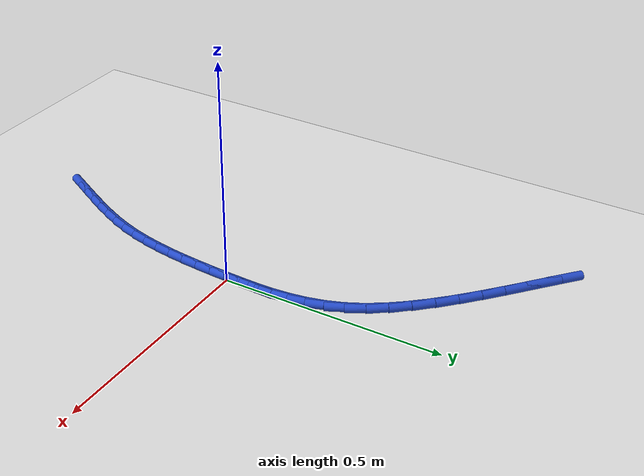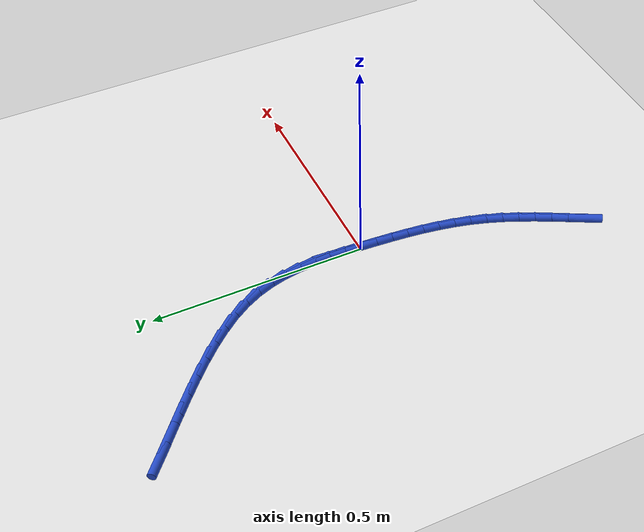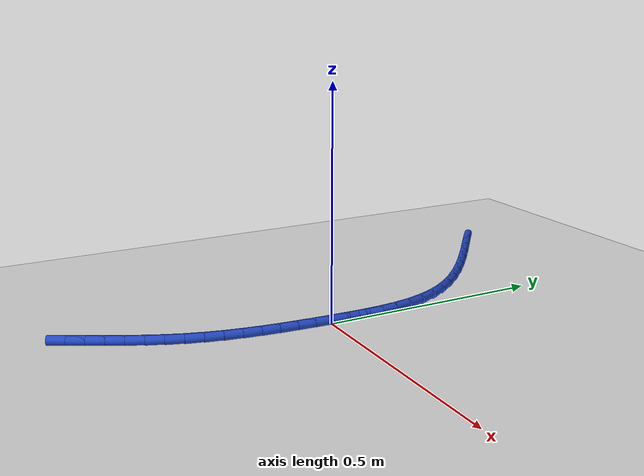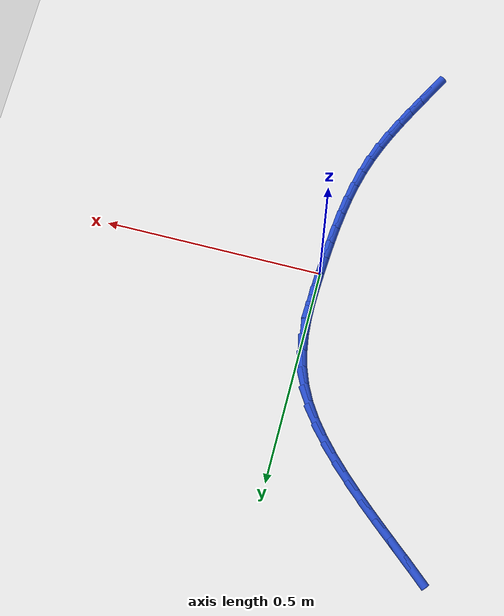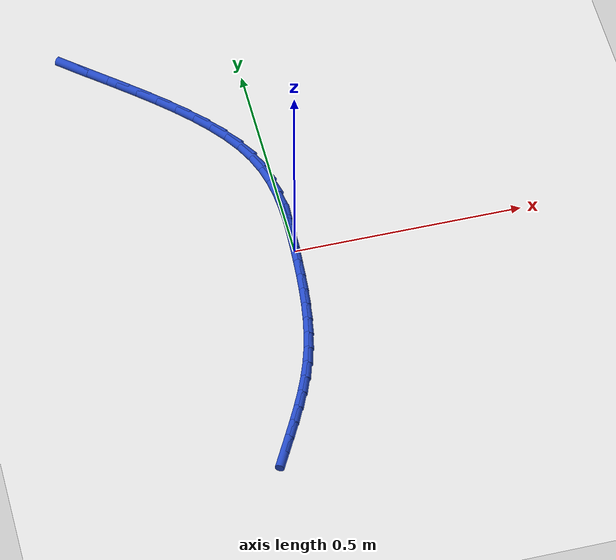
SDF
<sdf version="1.6">
 <world name="default">
  <model name="ground_plane">
   <static>1</static>
   <link name="link">
    <collision name="collision">
     <geometry><plane><normal>0 0 1</normal><size>100 100</size></plane></geometry>
     <surface><friction><ode><mu>100</mu><mu2>50</mu2></ode></friction></surface>
    </collision>
    <visual name="visual">
     <cast_shadows>0</cast_shadows>
     <geometry><plane><normal>0 0 1</normal><size>100 100</size></plane></geometry>
     <material>
      <script><uri>file://media/materials/scripts/gazebo.material</uri><name>Gazebo/WhiteGlow</name></script>
     </material>
    </visual>
   </link>
  </model>
  <model name="line">
   <link name="link_0">
    <pose>-1.5612511283791264e-17 6.938893903907228e-18 0.01 0 1.57 1.524741888929496</pose>
    <collision name="collision">
     <geometry><cylinder><radius>0.01</radius><length>0.08</length></cylinder></geometry>
    </collision>
    <visual name="visual">
     <material>
      <script><name>Gazebo/Blue</name><uri>file://media/materials/scripts/gazebo.material</uri></script>
     </material>
     <geometry><cylinder><radius>0.01</radius><length>0.08</length></cylinder></geometry>
    </visual>
   </link>
   <link name="link_1">
    <pose>0.0017695602424048658 0.03839606043845848 0.01 0 1.57 1.5489203057388585</pose>
    <collision name="collision">
     <geometry><cylinder><radius>0.01</radius><length>0.08</length></cylinder></geometry>
    </collision>
    <visual name="visual">
     <material>
      <script><name>Gazebo/Blue</name><uri>file://media/materials/scripts/gazebo.material</uri></script>
     </material>
     <geometry><cylinder><radius>0.01</radius><length>0.08</length></cylinder></geometry>
    </visual>
   </link>
   <link name="link_2">
    <pose>0.0026070915461237354 0.07667531123249223 0.01 0 1.57 -1.5512971736761452</pose>
    <collision name="collision">
     <geometry><cylinder><radius>0.01</radius><length>0.08</length></cylinder></geometry>
    </collision>
    <visual name="visual">
     <material>
      <script><name>Gazebo/Blue</name><uri>file://media/materials/scripts/gazebo.material</uri></script>
     </material>
     <geometry><cylinder><radius>0.01</radius><length>0.08</length></cylinder></geometry>
    </visual>
   </link>
   <link name="link_3">
    <pose>0.001863651592550372 0.11479726062324151 0.01 0 1.57 -1.4925537547146386</pose>
    <collision name="collision">
     <geometry><cylinder><radius>0.01</radius><length>0.08</length></cylinder></geometry>
    </collision>
    <visual name="visual">
     <material>
      <script><name>Gazebo/Blue</name><uri>file://media/materials/scripts/gazebo.material</uri></script>
     </material>
     <geometry><cylinder><radius>0.01</radius><length>0.08</length></cylinder></geometry>
    </visual>
   </link>
   <link name="link_4">
    <pose>-0.001109701936921447 0.1527214168518466 0.01 0 1.57 -1.4167376080699157</pose>
    <collision name="collision">
     <geometry><cylinder><radius>0.01</radius><length>0.08</length></cylinder></geometry>
    </collision>
    <visual name="visual">
     <material>
      <script><name>Gazebo/Blue</name><uri>file://media/materials/scripts/gazebo.material</uri></script>
     </material>
     <geometry><cylinder><radius>0.01</radius><length>0.08</length></cylinder></geometry>
    </visual>
   </link>
   <link name="link_5">
    <pose>-0.006961911360897937 0.19040728815944785 0.01 0 1.57 -1.3251074124394193</pose>
    <collision name="collision">
     <geometry><cylinder><radius>0.01</radius><length>0.08</length></cylinder></geometry>
    </collision>
    <visual name="visual">
     <material>
      <script><name>Gazebo/Blue</name><uri>file://media/materials/scripts/gazebo.material</uri></script>
     </material>
     <geometry><cylinder><radius>0.01</radius><length>0.08</length></cylinder></geometry>
    </visual>
   </link>
   <link name="link_6">
    <pose>-0.016341918997985316 0.2278143827871855 0.01 0 1.57 -1.2203530256097037</pose>
    <collision name="collision">
     <geometry><cylinder><radius>0.01</radius><length>0.08</length></cylinder></geometry>
    </collision>
    <visual name="visual">
     <material>
      <script><name>Gazebo/Blue</name><uri>file://media/materials/scripts/gazebo.material</uri></script>
     </material>
     <geometry><cylinder><radius>0.01</radius><length>0.08</length></cylinder></geometry>
    </visual>
   </link>
   <link name="link_7">
    <pose>-0.029898667166789822 0.26490220897619987 0.01 0 1.57 -1.1067819046408895</pose>
    <collision name="collision">
     <geometry><cylinder><radius>0.01</radius><length>0.08</length></cylinder></geometry>
    </collision>
    <visual name="visual">
     <material>
      <script><name>Gazebo/Blue</name><uri>file://media/materials/scripts/gazebo.material</uri></script>
     </material>
     <geometry><cylinder><radius>0.01</radius><length>0.08</length></cylinder></geometry>
    </visual>
   </link>
   <link name="link_8">
    <pose>-0.048279553905475815 0.3016302954106456 0.01 0 1.57 -0.997281423581346</pose>
    <collision name="collision">
     <geometry><cylinder><radius>0.01</radius><length>0.08</length></cylinder></geometry>
    </collision>
    <visual name="visual">
     <material>
      <script><name>Gazebo/Blue</name><uri>file://media/materials/scripts/gazebo.material</uri></script>
     </material>
     <geometry><cylinder><radius>0.01</radius><length>0.08</length></cylinder></geometry>
    </visual>
   </link>
   <link name="link_9">
    <pose>-0.071748415662538 0.33796324832078123 0.01 0 1.57 -0.9097134440611083</pose>
    <collision name="collision">
     <geometry><cylinder><radius>0.01</radius><length>0.08</length></cylinder></geometry>
    </collision>
    <visual name="visual">
     <material>
      <script><name>Gazebo/Blue</name><uri>file://media/materials/scripts/gazebo.material</uri></script>
     </material>
     <geometry><cylinder><radius>0.01</radius><length>0.08</length></cylinder></geometry>
    </visual>
   </link>
   <link name="link_10">
    <pose>-0.09968392739692357 0.37387739160722894 0.01 0 1.57 -0.8421960164812233</pose>
    <collision name="collision">
     <geometry><cylinder><radius>0.01</radius><length>0.08</length></cylinder></geometry>
    </collision>
    <visual name="visual">
     <material>
      <script><name>Gazebo/Blue</name><uri>file://media/materials/scripts/gazebo.material</uri></script>
     </material>
     <geometry><cylinder><radius>0.01</radius><length>0.08</length></cylinder></geometry>
    </visual>
   </link>
   <link name="link_11">
    <pose>-0.1313403053092484 0.4093506967419543 0.01 0 1.57 -0.7908399223104757</pose>
    <collision name="collision">
     <geometry><cylinder><radius>0.01</radius><length>0.08</length></cylinder></geometry>
    </collision>
    <visual name="visual">
     <material>
      <script><name>Gazebo/Blue</name><uri>file://media/materials/scripts/gazebo.material</uri></script>
     </material>
     <geometry><cylinder><radius>0.01</radius><length>0.08</length></cylinder></geometry>
    </visual>
   </link>
   <link name="link_12">
    <pose>-0.16597176560012838 0.44436113519692266 0.01 0 1.57 -0.7526974474765623</pose>
    <collision name="collision">
     <geometry><cylinder><radius>0.01</radius><length>0.08</length></cylinder></geometry>
    </collision>
    <visual name="visual">
     <material>
      <script><name>Gazebo/Blue</name><uri>file://media/materials/scripts/gazebo.material</uri></script>
     </material>
     <geometry><cylinder><radius>0.01</radius><length>0.08</length></cylinder></geometry>
    </visual>
   </link>
   <link name="link_13">
    <pose>-0.20283252447017946 0.4788866784440995 0.01 0 1.57 -0.7256919706972766</pose>
    <collision name="collision">
     <geometry><cylinder><radius>0.01</radius><length>0.08</length></cylinder></geometry>
    </collision>
    <visual name="visual">
     <material>
      <script><name>Gazebo/Blue</name><uri>file://media/materials/scripts/gazebo.material</uri></script>
     </material>
     <geometry><cylinder><radius>0.01</radius><length>0.08</length></cylinder></geometry>
    </visual>
   </link>
   <link name="link_14">
    <pose>-0.24117679812001783 0.5129052979554504 0.01 0 1.57 -0.7084906442747316</pose>
    <collision name="collision">
     <geometry><cylinder><radius>0.01</radius><length>0.08</length></cylinder></geometry>
    </collision>
    <visual name="visual">
     <material>
      <script><name>Gazebo/Blue</name><uri>file://media/materials/scripts/gazebo.material</uri></script>
     </material>
     <geometry><cylinder><radius>0.01</radius><length>0.08</length></cylinder></geometry>
    </visual>
   </link>
   <link name="link_15">
    <pose>-0.280258802750259 0.5463949652029404 0.01 0 1.57 -0.7004063416435891</pose>
    <collision name="collision">
     <geometry><cylinder><radius>0.01</radius><length>0.08</length></cylinder></geometry>
    </collision>
    <visual name="visual">
     <material>
      <script><name>Gazebo/Blue</name><uri>file://media/materials/scripts/gazebo.material</uri></script>
     </material>
     <geometry><cylinder><radius>0.01</radius><length>0.08</length></cylinder></geometry>
    </visual>
   </link>
   <link name="link_16">
    <pose>-0.3193327545615192 0.5793336516585352 0.01 0 1.57 -0.7013584550680976</pose>
    <collision name="collision">
     <geometry><cylinder><radius>0.01</radius><length>0.08</length></cylinder></geometry>
    </collision>
    <visual name="visual">
     <material>
      <script><name>Gazebo/Blue</name><uri>file://media/materials/scripts/gazebo.material</uri></script>
     </material>
     <geometry><cylinder><radius>0.01</radius><length>0.08</length></cylinder></geometry>
    </visual>
   </link>
   <link name="link_17">
    <pose>-0.3576528697544143 0.6116993287942004 0.01 0 1.57 -0.7119081820319877</pose>
    <collision name="collision">
     <geometry><cylinder><radius>0.01</radius><length>0.08</length></cylinder></geometry>
    </collision>
    <visual name="visual">
     <material>
      <script><name>Gazebo/Blue</name><uri>file://media/materials/scripts/gazebo.material</uri></script>
     </material>
     <geometry><cylinder><radius>0.01</radius><length>0.08</length></cylinder></geometry>
    </visual>
   </link>
   <link name="link_196">
    <pose>-0.1451383712339014 -0.5084791375413149 0.01 0 1.57 1.0790014653129236</pose>
    <collision name="collision">
     <geometry><cylinder><radius>0.01</radius><length>0.08</length></cylinder></geometry>
    </collision>
    <visual name="visual">
     <material>
      <script><name>Gazebo/Blue</name><uri>file://media/materials/scripts/gazebo.material</uri></script>
     </material>
     <geometry><cylinder><radius>0.01</radius><length>0.08</length></cylinder></geometry>
    </visual>
   </link>
   <link name="link_197">
    <pose>-0.12704058745293917 -0.4746954460418299 0.01 0 1.57 1.0837832020063292</pose>
    <collision name="collision">
     <geometry><cylinder><radius>0.01</radius><length>0.08</length></cylinder></geometry>
    </collision>
    <visual name="visual">
     <material>
      <script><name>Gazebo/Blue</name><uri>file://media/materials/scripts/gazebo.material</uri></script>
     </material>
     <geometry><cylinder><radius>0.01</radius><length>0.08</length></cylinder></geometry>
    </visual>
   </link>
   <link name="link_198">
    <pose>-0.10907541012322408 -0.4407705666037092 0.01 0 1.57 1.0992771399869117</pose>
    <collision name="collision">
     <geometry><cylinder><radius>0.01</radius><length>0.08</length></cylinder></geometry>
    </collision>
    <visual name="visual">
     <material>
      <script><name>Gazebo/Blue</name><uri>file://media/materials/scripts/gazebo.material</uri></script>
     </material>
     <geometry><cylinder><radius>0.01</radius><length>0.08</length></cylinder></geometry>
    </visual>
   </link>
   <link name="link_199">
    <pose>-0.09165113774256298 -0.40659718910293086 0.01 0 1.57 1.1256077960576532</pose>
    <collision name="collision">
     <geometry><cylinder><radius>0.01</radius><length>0.08</length></cylinder></geometry>
    </collision>
    <visual name="visual">
     <material>
      <script><name>Gazebo/Blue</name><uri>file://media/materials/scripts/gazebo.material</uri></script>
     </material>
     <geometry><cylinder><radius>0.01</radius><length>0.08</length></cylinder></geometry>
    </visual>
   </link>
   <link name="link_200">
    <pose>-0.07517606880876256 -0.37206800341547297 0.01 0 1.57 1.1629901142371932</pose>
    <collision name="collision">
     <geometry><cylinder><radius>0.01</radius><length>0.08</length></cylinder></geometry>
    </collision>
    <visual name="visual">
     <material>
      <script><name>Gazebo/Blue</name><uri>file://media/materials/scripts/gazebo.material</uri></script>
     </material>
     <geometry><cylinder><radius>0.01</radius><length>0.08</length></cylinder></geometry>
    </visual>
   </link>
   <link name="link_201">
    <pose>-0.06005850181962963 -0.3370756994173137 0.01 0 1.57 1.2116376352936429</pose>
    <collision name="collision">
     <geometry><cylinder><radius>0.01</radius><length>0.08</length></cylinder></geometry>
    </collision>
    <visual name="visual">
     <material>
      <script><name>Gazebo/Blue</name><uri>file://media/materials/scripts/gazebo.material</uri></script>
     </material>
     <geometry><cylinder><radius>0.01</radius><length>0.08</length></cylinder></geometry>
    </visual>
   </link>
   <link name="link_202">
    <pose>-0.0467067352729707 -0.30151296698443053 0.01 0 1.57 1.2699956250353268</pose>
    <collision name="collision">
     <geometry><cylinder><radius>0.01</radius><length>0.08</length></cylinder></geometry>
    </collision>
    <visual name="visual">
     <material>
      <script><name>Gazebo/Blue</name><uri>file://media/materials/scripts/gazebo.material</uri></script>
     </material>
     <geometry><cylinder><radius>0.01</radius><length>0.08</length></cylinder></geometry>
    </visual>
   </link>
   <link name="link_203">
    <pose>-0.03547015557328224 -0.2652909157295598 0.01 0 1.57 1.3262985398686724</pose>
    <collision name="collision">
     <geometry><cylinder><radius>0.01</radius><length>0.08</length></cylinder></geometry>
    </collision>
    <visual name="visual">
     <material>
      <script><name>Gazebo/Blue</name><uri>file://media/materials/scripts/gazebo.material</uri></script>
     </material>
     <geometry><cylinder><radius>0.01</radius><length>0.08</length></cylinder></geometry>
    </visual>
   </link>
   <link name="link_204">
    <pose>-0.026279161205152637 -0.2284516580316823 0.01 0 1.57 1.3753306049092378</pose>
    <collision name="collision">
     <geometry><cylinder><radius>0.01</radius><length>0.08</length></cylinder></geometry>
    </collision>
    <visual name="visual">
     <material>
      <script><name>Gazebo/Blue</name><uri>file://media/materials/scripts/gazebo.material</uri></script>
     </material>
     <geometry><cylinder><radius>0.01</radius><length>0.08</length></cylinder></geometry>
    </visual>
   </link>
   <link name="link_205">
    <pose>-0.018882593192176403 -0.19109407289357086 0.01 0 1.57 1.4170555234872817</pose>
    <collision name="collision">
     <geometry><cylinder><radius>0.01</radius><length>0.08</length></cylinder></geometry>
    </collision>
    <visual name="visual">
     <material>
      <script><name>Gazebo/Blue</name><uri>file://media/materials/scripts/gazebo.material</uri></script>
     </material>
     <geometry><cylinder><radius>0.01</radius><length>0.08</length></cylinder></geometry>
    </visual>
   </link>
   <link name="link_206">
    <pose>-0.013028561578507953 -0.15331726786952546 0.01 0 1.57 1.4515807534482232</pose>
    <collision name="collision">
     <geometry><cylinder><radius>0.01</radius><length>0.08</length></cylinder></geometry>
    </collision>
    <visual name="visual">
     <material>
      <script><name>Gazebo/Blue</name><uri>file://media/materials/scripts/gazebo.material</uri></script>
     </material>
     <geometry><cylinder><radius>0.01</radius><length>0.08</length></cylinder></geometry>
    </visual>
   </link>
   <link name="link_207">
    <pose>-0.008465176408301682 -0.11522035051384578 0.01 0 1.57 1.4790706278319472</pose>
    <collision name="collision">
     <geometry><cylinder><radius>0.01</radius><length>0.08</length></cylinder></geometry>
    </collision>
    <visual name="visual">
     <material>
      <script><name>Gazebo/Blue</name><uri>file://media/materials/scripts/gazebo.material</uri></script>
     </material>
     <geometry><cylinder><radius>0.01</radius><length>0.08</length></cylinder></geometry>
    </visual>
   </link>
   <link name="link_208">
    <pose>-0.004940547725712001 -0.07690242838083176 0.01 0 1.57 1.4996943532696756</pose>
    <collision name="collision">
     <geometry><cylinder><radius>0.01</radius><length>0.08</length></cylinder></geometry>
    </collision>
    <visual name="visual">
     <material>
      <script><name>Gazebo/Blue</name><uri>file://media/materials/scripts/gazebo.material</uri></script>
     </material>
     <geometry><cylinder><radius>0.01</radius><length>0.08</length></cylinder></geometry>
    </visual>
   </link>
   <link name="link_209">
    <pose>-0.0022027855748932472 -0.038462609024782254 0.01 0 1.57 1.5135879881411534</pose>
    <collision name="collision">
     <geometry><cylinder><radius>0.01</radius><length>0.08</length></cylinder></geometry>
    </collision>
    <visual name="visual">
     <material>
      <script><name>Gazebo/Blue</name><uri>file://media/materials/scripts/gazebo.material</uri></script>
     </material>
     <geometry><cylinder><radius>0.01</radius><length>0.08</length></cylinder></geometry>
    </visual>
   </link>
   <link name="link_210">
    <pose>6.505213034913027e-19 2.42861286636753e-16 0.01 0 1.57 1.520827942114616</pose>
    <collision name="collision">
     <geometry><cylinder><radius>0.01</radius><length>0.08</length></cylinder></geometry>
    </collision>
    <visual name="visual">
     <material>
      <script><name>Gazebo/Blue</name><uri>file://media/materials/scripts/gazebo.material</uri></script>
     </material>
     <geometry><cylinder><radius>0.01</radius><length>0.08</length></cylinder></geometry>
    </visual>
   </link>
   <link name="link_211">
    <pose>0.0019196989548135122 0.038386291139218584 0.01 0 1.57 1.5214133344046485</pose>
    <collision name="collision">
     <geometry><cylinder><radius>0.01</radius><length>0.08</length></cylinder></geometry>
    </collision>
    <visual name="visual">
     <material>
      <script><name>Gazebo/Blue</name><uri>file://media/materials/scripts/gazebo.material</uri></script>
     </material>
     <geometry><cylinder><radius>0.01</radius><length>0.08</length></cylinder></geometry>
    </visual>
   </link>
   <link name="link_212">
    <pose>0.0038082012453929184 0.07659715683857382 0.01 0 1.57 1.5211199636575976</pose>
    <collision name="collision">
     <geometry><cylinder><radius>0.01</radius><length>0.08</length></cylinder></geometry>
    </collision>
    <visual name="visual">
     <material>
      <script><name>Gazebo/Blue</name><uri>file://media/materials/scripts/gazebo.material</uri></script>
     </material>
     <geometry><cylinder><radius>0.01</radius><length>0.08</length></cylinder></geometry>
    </visual>
   </link>
  </model>
 </world>
</sdf>
